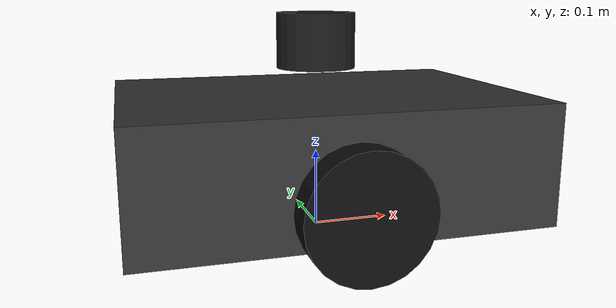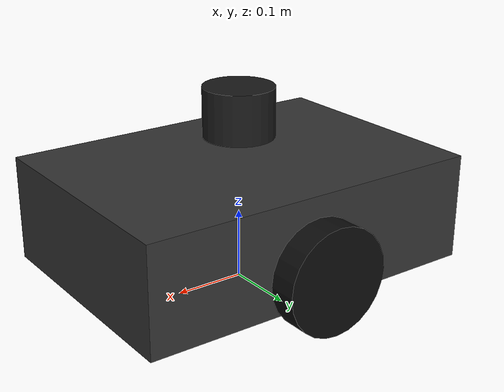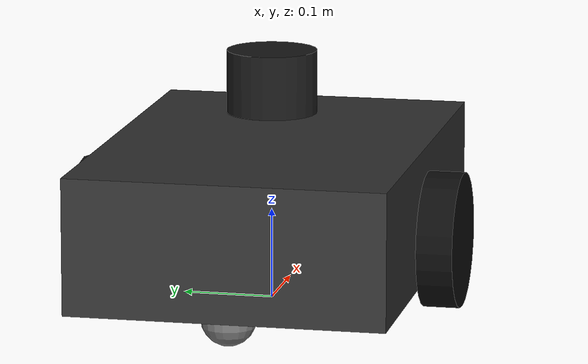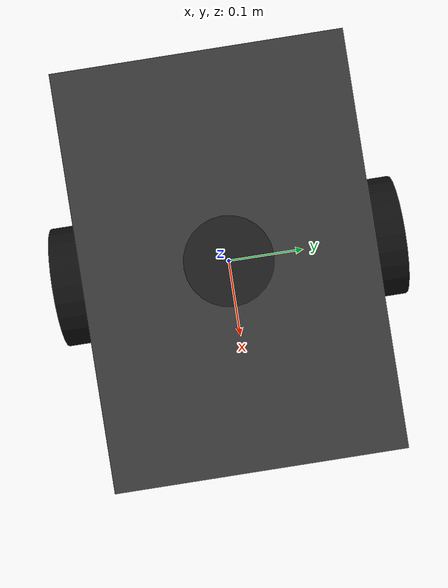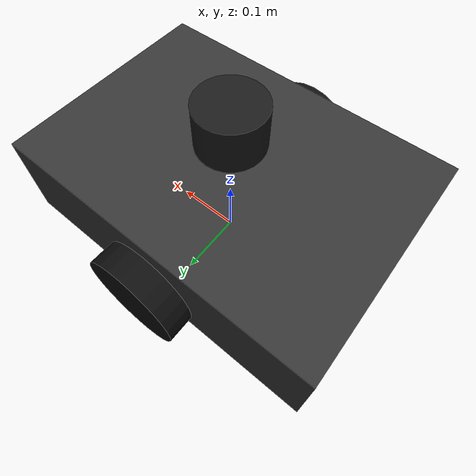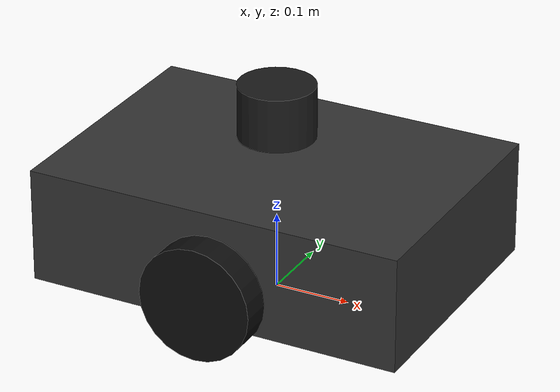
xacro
<?xml version="1.0"?>
<robot name="corridor_robot" xmlns:xacro="http://www.ros.org/wiki/xacro">

  <!-- ===================== Parameters (meters, kg) ===================== -->
  <xacro:property name="chassis_length" value="0.5"/>
  <xacro:property name="chassis_width" value="0.35"/>
  <xacro:property name="chassis_height" value="0.15"/>
  <xacro:property name="wheel_radius" value="0.075"/>
  <xacro:property name="wheel_width" value="0.04"/>
  <xacro:property name="wheel_separation" value="${chassis_width + wheel_width}"/>
  <xacro:property name="caster_radius" value="0.03"/>
  <xacro:property name="chassis_clearance" value="0.03"/>

  <!-- LiDAR mount parameters -->
  <xacro:property name="lidar_radius" value="0.05"/>
  <xacro:property name="lidar_height" value="0.07"/>
  <xacro:property name="lidar_riser_height" value="0.03"/>

  <!-- IMU mount parameters -->
  <xacro:property name="imu_size" value="0.02"/>

  <!-- ===================== Visual materials ===================== -->
  <material name="chassis_grey">
    <color rgba="0.2 0.2 0.2 1.0"/>
  </material>

  <material name="wheel_black">
    <color rgba="0.05 0.05 0.05 1.0"/>
  </material>

  <material name="caster_grey">
    <color rgba="0.5 0.5 0.5 1.0"/>
  </material>

  <material name="lidar_black">
    <color rgba="0.1 0.1 0.1 1.0"/>
  </material>

  <material name="imu_green">
    <color rgba="0.1 0.6 0.1 1.0"/>
  </material>

  <!-- ===================== base_footprint ===================== -->
  <link name="base_footprint"/>

  <!-- ===================== base_link (chassis) ===================== -->
  <link name="base_link">

    <visual>
      <geometry>
        <box size="${chassis_length} ${chassis_width} ${chassis_height}"/>
      </geometry>
      <material name="chassis_grey"/>
    </visual>

    <collision>
      <geometry>
        <box size="${chassis_length} ${chassis_width} ${chassis_height}"/>
      </geometry>
    </collision>

    <inertial>
      <mass value="5.0"/>
      <inertia
        ixx="0.05"
        ixy="0.0"
        ixz="0.0"
        iyy="0.06"
        iyz="0.0"
        izz="0.08"/>
    </inertial>

  </link>

  <joint name="base_footprint_joint" type="fixed">
    <parent link="base_footprint"/>
    <child link="base_link"/>
    <origin
      xyz="0 0 ${chassis_clearance + chassis_height/2}"
      rpy="0 0 0"/>
  </joint>

  <!-- ===================== Wheel macro ===================== -->
  <xacro:macro name="wheel" params="prefix reflect">

    <link name="${prefix}_wheel_link">

      <visual>
        <origin
          xyz="0 0 0"
          rpy="${pi/2} 0 0"/>
        <geometry>
          <cylinder
            radius="${wheel_radius}"
            length="${wheel_width}"/>
        </geometry>
        <material name="wheel_black"/>
      </visual>

      <collision>
        <origin
          xyz="0 0 0"
          rpy="${pi/2} 0 0"/>
        <geometry>
          <cylinder
            radius="${wheel_radius}"
            length="${wheel_width}"/>
        </geometry>
      </collision>

      <inertial>
        <mass value="0.5"/>
        <inertia
          ixx="0.001"
          ixy="0.0"
          ixz="0.0"
          iyy="0.001"
          iyz="0.0"
          izz="0.001"/>
      </inertial>

    </link>

    <joint name="${prefix}_wheel_joint" type="continuous">
      <parent link="base_link"/>
      <child link="${prefix}_wheel_link"/>
      <origin
        xyz="0 ${reflect * wheel_separation / 2}
             ${wheel_radius - (chassis_clearance + chassis_height/2)}"
        rpy="0 0 0"/>
      <axis xyz="0 1 0"/>
    </joint>

  </xacro:macro>

  <xacro:wheel prefix="left" reflect="1"/>
  <xacro:wheel prefix="right" reflect="-1"/>

  <gazebo reference="left_wheel_link">
    <mu1>1.0</mu1>
    <mu2>1.0</mu2>
  </gazebo>

  <gazebo reference="right_wheel_link">
    <mu1>1.0</mu1>
    <mu2>1.0</mu2>
  </gazebo>

  <!-- ===================== Rear caster ===================== -->
  <link name="caster_link">

    <visual>
      <geometry>
        <sphere radius="${caster_radius}"/>
      </geometry>
      <material name="caster_grey"/>
    </visual>

    <collision>
      <geometry>
        <sphere radius="${caster_radius}"/>
      </geometry>
    </collision>

    <inertial>
      <mass value="0.1"/>
      <inertia
        ixx="0.0001"
        ixy="0.0"
        ixz="0.0"
        iyy="0.0001"
        iyz="0.0"
        izz="0.0001"/>
    </inertial>

  </link>

  <joint name="caster_joint" type="fixed">
    <parent link="base_link"/>
    <child link="caster_link"/>
    <origin
      xyz="${-chassis_length/2 + caster_radius}
           0
           ${caster_radius - (chassis_clearance + chassis_height/2)}"
      rpy="0 0 0"/>
  </joint>

  <gazebo reference="caster_link">
    <mu1>0.01</mu1>
    <mu2>0.01</mu2>
  </gazebo>

  <!-- ===================== LiDAR ===================== -->
  <link name="lidar_link">

    <visual>
      <geometry>
        <cylinder radius="${lidar_radius}" length="${lidar_height}"/>
      </geometry>
      <material name="lidar_black"/>
    </visual>

    <collision>
      <geometry>
        <cylinder radius="${lidar_radius}" length="${lidar_height}"/>
      </geometry>
    </collision>

    <inertial>
      <mass value="0.2"/>
      <inertia
        ixx="0.0002"
        ixy="0.0"
        ixz="0.0"
        iyy="0.0002"
        iyz="0.0"
        izz="0.0002"/>
    </inertial>

  </link>

  <joint name="lidar_joint" type="fixed">
    <parent link="base_link"/>
    <child link="lidar_link"/>
    <origin
      xyz="0 0 ${chassis_height/2 + lidar_riser_height + lidar_height/2}"
      rpy="0 0 0"/>
  </joint>

  <gazebo reference="lidar_link">
    <sensor name="lidar" type="gpu_lidar">
      <pose>0 0 0 0 0 0</pose>
      <topic>lidar/points</topic>
      <update_rate>10</update_rate>
      <always_on>true</always_on>
      <visualize>true</visualize>
      <lidar>
        <scan>
          <horizontal>
            <samples>900</samples>
            <resolution>1</resolution>
            <min_angle>-3.14159</min_angle>
            <max_angle>3.14159</max_angle>
          </horizontal>
          <vertical>
            <samples>16</samples>
            <resolution>1</resolution>
            <min_angle>-0.2618</min_angle>
            <max_angle>0.2618</max_angle>
          </vertical>
        </scan>
        <range>
          <min>0.3</min>
          <max>100.0</max>
          <resolution>0.01</resolution>
        </range>
      </lidar>
    </sensor>
  </gazebo>

  <!-- ===================== IMU ===================== -->
  <link name="imu_link">

    <visual>
      <geometry>
        <box size="${imu_size} ${imu_size} ${imu_size}"/>
      </geometry>
      <material name="imu_green"/>
    </visual>

    <collision>
      <geometry>
        <box size="${imu_size} ${imu_size} ${imu_size}"/>
      </geometry>
    </collision>

    <inertial>
      <mass value="0.05"/>
      <inertia
        ixx="0.00001"
        ixy="0.0"
        ixz="0.0"
        iyy="0.00001"
        iyz="0.0"
        izz="0.00001"/>
    </inertial>

  </link>

  <joint name="imu_joint" type="fixed">
    <parent link="base_link"/>
    <child link="imu_link"/>
    <origin xyz="0 0 0" rpy="0 0 0"/>
  </joint>

  <gazebo reference="imu_link">
    <sensor name="imu_sensor" type="imu">
      <topic>imu</topic>
      <update_rate>100</update_rate>
      <always_on>true</always_on>
      <visualize>true</visualize>
    </sensor>
  </gazebo>

  <!-- ===================== Differential drive plugin ===================== -->
  <gazebo>

    <plugin
      filename="gz-sim-diff-drive-system"
      name="gz::sim::systems::DiffDrive">

      <left_joint>left_wheel_joint</left_joint>
      <right_joint>right_wheel_joint</right_joint>

      <wheel_separation>${wheel_separation}</wheel_separation>
      <wheel_radius>${wheel_radius}</wheel_radius>

      <odom_publish_frequency>30</odom_publish_frequency>

      <topic>cmd_vel</topic>
      <odom_topic>odom</odom_topic>
      <tf_topic>tf</tf_topic>

      <frame_id>odom</frame_id>
      <child_frame_id>base_footprint</child_frame_id>

      <max_linear_acceleration>1.0</max_linear_acceleration>
      <min_linear_acceleration>-1.0</min_linear_acceleration>

      <max_angular_acceleration>2.0</max_angular_acceleration>
      <min_angular_acceleration>-2.0</min_angular_acceleration>

      <max_linear_velocity>1.0</max_linear_velocity>
      <min_linear_velocity>-1.0</min_linear_velocity>

      <max_angular_velocity>2.0</max_angular_velocity>
      <min_angular_velocity>-2.0</min_angular_velocity>

    </plugin>

    <plugin
      filename="gz-sim-joint-state-publisher-system"
      name="gz::sim::systems::JointStatePublisher"/>

  </gazebo>

</robot>
